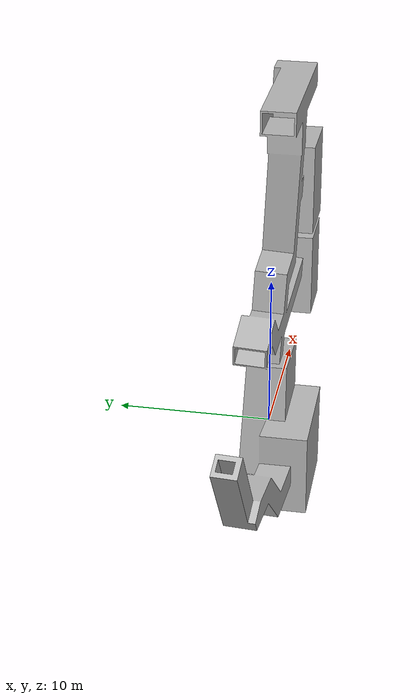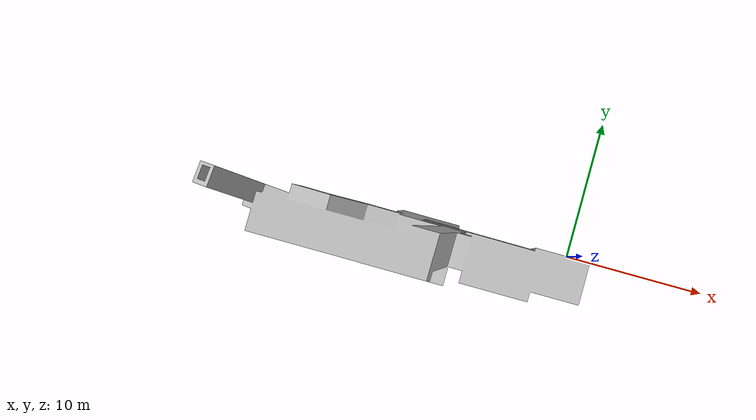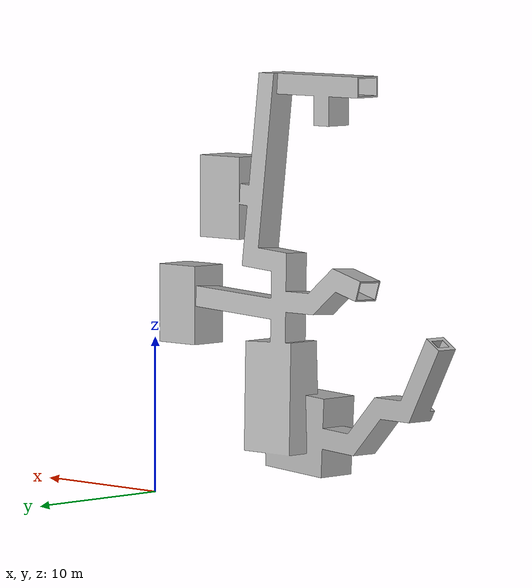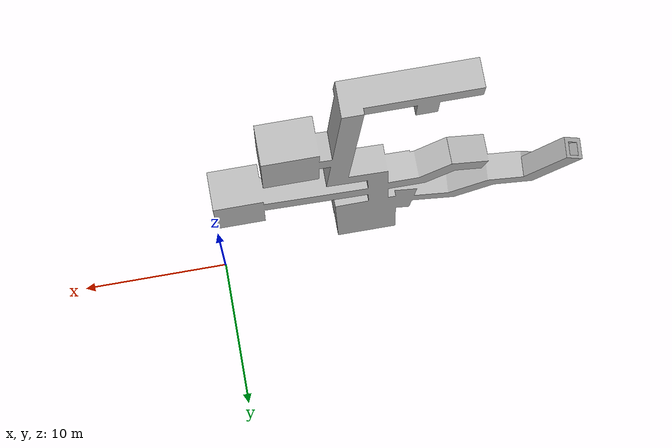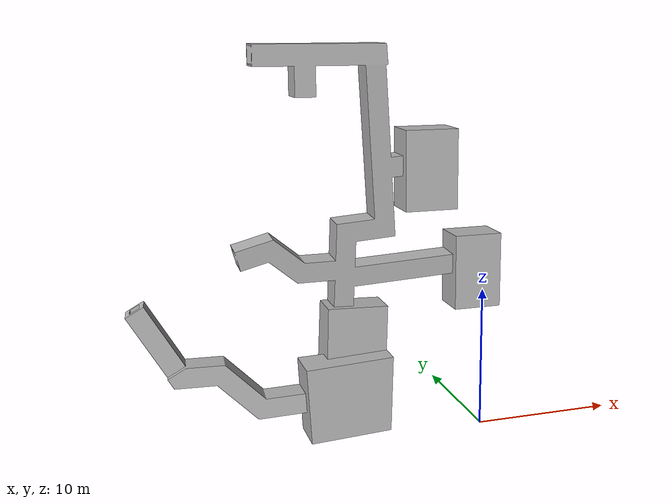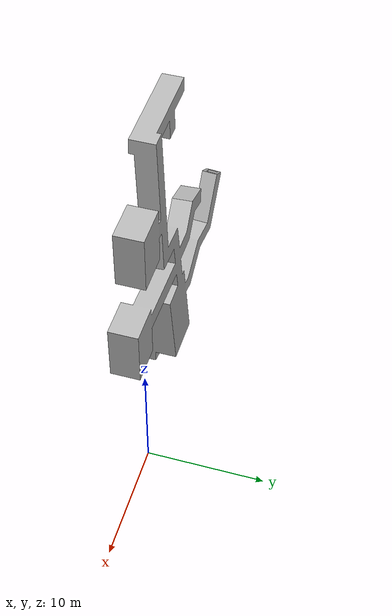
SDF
<?xml version="1.0" encoding="utf-8"?>
<sdf version="1.8">
    <model name="cave_1">
        <link name="link">
            <pose>0 0 2 1.57 0 0</pose>

            <collision name="collision">
                <laser_retro>0</laser_retro>
                <max_contacts>10</max_contacts>
                <pose>0 0 0 0 -0 0</pose>
                <geometry>
                    <mesh>
                        <uri>meshes/untitled.dae</uri>
                    </mesh>
                </geometry>
            </collision>

            <visual name="visual">
                <pose>0 0 0 0 -0 0</pose>
                <geometry>
                    <mesh>
                        <uri>meshes/untitled.dae</uri>
                    </mesh>
                </geometry>
            </visual>

        </link>
    </model>
</sdf>
